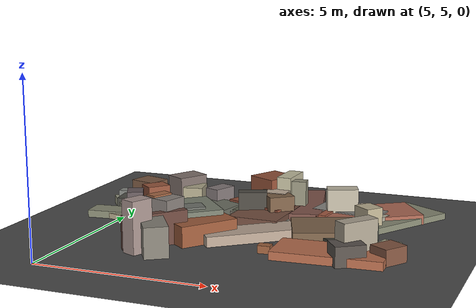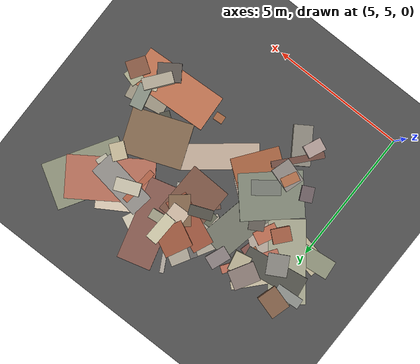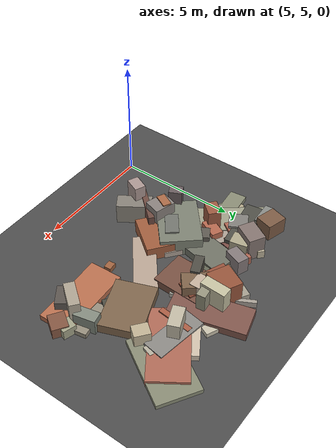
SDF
<sdf version="1.6">
 <world name="navitas_arena">
  <model name="ground_plane">
   <static>true</static>
   <link name="link">
    <collision name="collision">
     <geometry><plane><normal>0 0 1</normal><size>400 400</size></plane></geometry>
     <surface><friction><ode><mu>0.800</mu><mu2>0.800</mu2></ode></friction></surface>
    </collision>
    <visual name="visual">
     <cast_shadows>false</cast_shadows>
     <geometry><plane><normal>0 0 1</normal><size>400 400</size></plane></geometry>
     <material>
      <specular>0.04 0.04 0.04 1</specular>
      <script>
       <uri>file://media/materials/scripts/navitas_asphalt.material</uri>
       <name>Navitas/RealArenaAsphalt</name>
      </script>
     </material>
    </visual>
   </link>
  </model>
  <model name="deb_orta_13">
   <static>true</static>
   <pose>12.582 8.176 0.000 0 0 0</pose>
   <link name="link">
    <collision name="col_0">
     <pose>-0.451 0.122 0.120 0.000 0.000 0.054</pose>
     <geometry><box><size>3.081 1.350 0.240</size></box></geometry>
    </collision>
    <visual name="vis_0">
     <pose>-0.451 0.122 0.120 0.000 0.000 0.054</pose>
     <geometry><box><size>3.081 1.350 0.240</size></box></geometry>
     <material>
      <ambient>0.68 0.40 0.29 1</ambient>
      <diffuse>0.73 0.44 0.31 1</diffuse>
      <specular>0.05 0.05 0.045 1</specular>
     </material>
    </visual>
    <collision name="col_1">
     <pose>0.221 0.506 0.106 0.000 0.000 0.178</pose>
     <geometry><box><size>1.469 1.584 0.212</size></box></geometry>
    </collision>
    <visual name="vis_1">
     <pose>0.221 0.506 0.106 0.000 0.000 0.178</pose>
     <geometry><box><size>1.469 1.584 0.212</size></box></geometry>
     <material>
      <ambient>0.54 0.52 0.45 1</ambient>
      <diffuse>0.59 0.56 0.49 1</diffuse>
      <specular>0.05 0.05 0.045 1</specular>
     </material>
    </visual>
    <collision name="col_2">
     <pose>0.133 0.547 0.085 0.000 0.000 0.479</pose>
     <geometry><box><size>0.450 0.287 0.169</size></box></geometry>
    </collision>
    <visual name="vis_2">
     <pose>0.133 0.547 0.085 0.000 0.000 0.479</pose>
     <geometry><box><size>0.450 0.287 0.169</size></box></geometry>
     <material>
      <ambient>0.52 0.48 0.48 1</ambient>
      <diffuse>0.56 0.51 0.52 1</diffuse>
      <specular>0.05 0.05 0.045 1</specular>
     </material>
    </visual>
    <collision name="col_3">
     <pose>0.064 -0.182 0.288 0.000 0.000 2.178</pose>
     <geometry><box><size>0.678 0.854 0.577</size></box></geometry>
    </collision>
    <visual name="vis_3">
     <pose>0.064 -0.182 0.288 0.000 0.000 2.178</pose>
     <geometry><box><size>0.678 0.854 0.577</size></box></geometry>
     <material>
      <ambient>0.34 0.30 0.29 1</ambient>
      <diffuse>0.36 0.33 0.31 1</diffuse>
      <specular>0.05 0.05 0.045 1</specular>
     </material>
    </visual>
   </link>
  </model>
  <model name="deb_orta_18">
   <static>true</static>
   <pose>10.770 9.122 0.000 0 0 0</pose>
   <link name="link">
    <collision name="col_0">
     <pose>1.001 0.191 0.128 0.000 0.000 -0.649</pose>
     <geometry><box><size>0.460 0.358 0.256</size></box></geometry>
    </collision>
    <visual name="vis_0">
     <pose>1.001 0.191 0.128 0.000 0.000 -0.649</pose>
     <geometry><box><size>0.460 0.358 0.256</size></box></geometry>
     <material>
      <ambient>0.28 0.28 0.24 1</ambient>
      <diffuse>0.30 0.30 0.26 1</diffuse>
      <specular>0.05 0.05 0.045 1</specular>
     </material>
    </visual>
    <collision name="col_1">
     <pose>-0.461 -0.972 0.109 0.000 0.000 1.649</pose>
     <geometry><box><size>0.286 0.354 0.218</size></box></geometry>
    </collision>
    <visual name="vis_1">
     <pose>-0.461 -0.972 0.109 0.000 0.000 1.649</pose>
     <geometry><box><size>0.286 0.354 0.218</size></box></geometry>
     <material>
      <ambient>0.58 0.36 0.24 1</ambient>
      <diffuse>0.63 0.39 0.25 1</diffuse>
      <specular>0.05 0.05 0.045 1</specular>
     </material>
    </visual>
    <collision name="col_2">
     <pose>-1.306 0.081 0.147 0.000 0.000 0.681</pose>
     <geometry><box><size>2.805 0.912 0.294</size></box></geometry>
    </collision>
    <visual name="vis_2">
     <pose>-1.306 0.081 0.147 0.000 0.000 0.681</pose>
     <geometry><box><size>2.805 0.912 0.294</size></box></geometry>
     <material>
      <ambient>0.68 0.60 0.53 1</ambient>
      <diffuse>0.73 0.65 0.58 1</diffuse>
      <specular>0.05 0.05 0.045 1</specular>
     </material>
    </visual>
    <collision name="col_3">
     <pose>0.809 0.943 0.200 0.000 0.000 0.368</pose>
     <geometry><box><size>2.230 1.648 0.401</size></box></geometry>
    </collision>
    <visual name="vis_3">
     <pose>0.809 0.943 0.200 0.000 0.000 0.368</pose>
     <geometry><box><size>2.230 1.648 0.401</size></box></geometry>
     <material>
      <ambient>0.46 0.37 0.28 1</ambient>
      <diffuse>0.50 0.40 0.30 1</diffuse>
      <specular>0.05 0.05 0.045 1</specular>
     </material>
    </visual>
   </link>
  </model>
  <model name="deb_orta_35">
   <static>true</static>
   <pose>7.128 10.707 0.000 0 0 0</pose>
   <link name="link">
    <collision name="col_0">
     <pose>-0.754 0.720 0.179 0.000 0.000 0.964</pose>
     <geometry><box><size>2.099 0.285 0.358</size></box></geometry>
    </collision>
    <visual name="vis_0">
     <pose>-0.754 0.720 0.179 0.000 0.000 0.964</pose>
     <geometry><box><size>2.099 0.285 0.358</size></box></geometry>
     <material>
      <ambient>0.65 0.38 0.30 1</ambient>
      <diffuse>0.70 0.41 0.33 1</diffuse>
      <specular>0.05 0.05 0.045 1</specular>
     </material>
    </visual>
    <collision name="col_1">
     <pose>0.303 -0.256 0.175 0.000 0.000 1.373</pose>
     <geometry><box><size>2.753 1.196 0.350</size></box></geometry>
    </collision>
    <visual name="vis_1">
     <pose>0.303 -0.256 0.175 0.000 0.000 1.373</pose>
     <geometry><box><size>2.753 1.196 0.350</size></box></geometry>
     <material>
      <ambient>0.41 0.42 0.37 1</ambient>
      <diffuse>0.44 0.45 0.40 1</diffuse>
      <specular>0.05 0.05 0.045 1</specular>
     </material>
    </visual>
    <collision name="col_2">
     <pose>-0.043 -0.608 0.284 0.000 0.000 3.665</pose>
     <geometry><box><size>0.559 0.820 0.568</size></box></geometry>
    </collision>
    <visual name="vis_2">
     <pose>-0.043 -0.608 0.284 0.000 0.000 3.665</pose>
     <geometry><box><size>0.559 0.820 0.568</size></box></geometry>
     <material>
      <ambient>0.34 0.32 0.30 1</ambient>
      <diffuse>0.37 0.35 0.32 1</diffuse>
      <specular>0.05 0.05 0.045 1</specular>
     </material>
    </visual>
    <collision name="col_3">
     <pose>-0.132 -0.032 0.159 0.000 0.000 1.115</pose>
     <geometry><box><size>1.093 0.151 0.318</size></box></geometry>
    </collision>
    <visual name="vis_3">
     <pose>-0.132 -0.032 0.159 0.000 0.000 1.115</pose>
     <geometry><box><size>1.093 0.151 0.318</size></box></geometry>
     <material>
      <ambient>0.45 0.32 0.24 1</ambient>
      <diffuse>0.49 0.35 0.26 1</diffuse>
      <specular>0.05 0.05 0.045 1</specular>
     </material>
    </visual>
    <collision name="col_4">
     <pose>-1.172 -0.051 0.111 0.000 0.000 1.307</pose>
     <geometry><box><size>1.717 1.446 0.221</size></box></geometry>
    </collision>
    <visual name="vis_4">
     <pose>-1.172 -0.051 0.111 0.000 0.000 1.307</pose>
     <geometry><box><size>1.717 1.446 0.221</size></box></geometry>
     <material>
      <ambient>0.45 0.28 0.26 1</ambient>
      <diffuse>0.49 0.31 0.28 1</diffuse>
      <specular>0.05 0.05 0.045 1</specular>
     </material>
    </visual>
    <collision name="col_5">
     <pose>0.150 0.673 0.160 0.000 0.000 3.395</pose>
     <geometry><box><size>0.405 0.422 0.320</size></box></geometry>
    </collision>
    <visual name="vis_5">
     <pose>0.150 0.673 0.160 0.000 0.000 3.395</pose>
     <geometry><box><size>0.405 0.422 0.320</size></box></geometry>
     <material>
      <ambient>0.53 0.52 0.47 1</ambient>
      <diffuse>0.57 0.56 0.51 1</diffuse>
      <specular>0.05 0.05 0.045 1</specular>
     </material>
    </visual>
   </link>
  </model>
  <model name="deb_orta_74">
   <static>true</static>
   <pose>11.235 11.596 0.000 0 0 0</pose>
   <link name="link">
    <collision name="col_0">
     <pose>0.086 0.420 0.502 0.000 0.000 3.532</pose>
     <geometry><box><size>0.921 0.475 1.005</size></box></geometry>
    </collision>
    <visual name="vis_0">
     <pose>0.086 0.420 0.502 0.000 0.000 3.532</pose>
     <geometry><box><size>0.921 0.475 1.005</size></box></geometry>
     <material>
      <ambient>0.70 0.68 0.60 1</ambient>
      <diffuse>0.76 0.73 0.65 1</diffuse>
      <specular>0.05 0.05 0.045 1</specular>
     </material>
    </visual>
    <collision name="col_1">
     <pose>0.535 -0.063 0.089 0.000 0.000 2.727</pose>
     <geometry><box><size>1.995 0.194 0.178</size></box></geometry>
    </collision>
    <visual name="vis_1">
     <pose>0.535 -0.063 0.089 0.000 0.000 2.727</pose>
     <geometry><box><size>1.995 0.194 0.178</size></box></geometry>
     <material>
      <ambient>0.75 0.69 0.60 1</ambient>
      <diffuse>0.81 0.75 0.65 1</diffuse>
      <specular>0.05 0.05 0.045 1</specular>
     </material>
    </visual>
    <collision name="col_2">
     <pose>0.456 0.613 0.067 0.000 0.000 1.453</pose>
     <geometry><box><size>1.656 0.122 0.135</size></box></geometry>
    </collision>
    <visual name="vis_2">
     <pose>0.456 0.613 0.067 0.000 0.000 1.453</pose>
     <geometry><box><size>1.656 0.122 0.135</size></box></geometry>
     <material>
      <ambient>0.35 0.34 0.34 1</ambient>
      <diffuse>0.38 0.37 0.36 1</diffuse>
      <specular>0.05 0.05 0.045 1</specular>
     </material>
    </visual>
    <collision name="col_3">
     <pose>0.200 0.618 0.133 0.000 0.000 2.126</pose>
     <geometry><box><size>1.535 1.779 0.266</size></box></geometry>
    </collision>
    <visual name="vis_3">
     <pose>0.200 0.618 0.133 0.000 0.000 2.126</pose>
     <geometry><box><size>1.535 1.779 0.266</size></box></geometry>
     <material>
      <ambient>0.76 0.70 0.63 1</ambient>
      <diffuse>0.82 0.76 0.68 1</diffuse>
      <specular>0.05 0.05 0.045 1</specular>
     </material>
    </visual>
    <collision name="col_4">
     <pose>-0.198 0.180 0.179 0.000 0.000 1.469</pose>
     <geometry><box><size>1.384 0.225 0.357</size></box></geometry>
    </collision>
    <visual name="vis_4">
     <pose>-0.198 0.180 0.179 0.000 0.000 1.469</pose>
     <geometry><box><size>1.384 0.225 0.357</size></box></geometry>
     <material>
      <ambient>0.62 0.34 0.25 1</ambient>
      <diffuse>0.67 0.37 0.27 1</diffuse>
      <specular>0.05 0.05 0.045 1</specular>
     </material>
    </visual>
   </link>
  </model>
  <model name="deb_orta_101">
   <static>true</static>
   <pose>12.475 11.785 0.000 0 0 0</pose>
   <link name="link">
    <collision name="col_0">
     <pose>0.169 0.025 0.155 0.000 0.000 1.248</pose>
     <geometry><box><size>0.431 0.177 0.311</size></box></geometry>
    </collision>
    <visual name="vis_0">
     <pose>0.169 0.025 0.155 0.000 0.000 1.248</pose>
     <geometry><box><size>0.431 0.177 0.311</size></box></geometry>
     <material>
      <ambient>0.67 0.65 0.58 1</ambient>
      <diffuse>0.72 0.70 0.63 1</diffuse>
      <specular>0.05 0.05 0.045 1</specular>
     </material>
    </visual>
    <collision name="col_1">
     <pose>-0.925 0.310 0.169 0.000 0.000 -0.153</pose>
     <geometry><box><size>2.104 0.859 0.338</size></box></geometry>
    </collision>
    <visual name="vis_1">
     <pose>-0.925 0.310 0.169 0.000 0.000 -0.153</pose>
     <geometry><box><size>2.104 0.859 0.338</size></box></geometry>
     <material>
      <ambient>0.51 0.50 0.48 1</ambient>
      <diffuse>0.55 0.54 0.52 1</diffuse>
      <specular>0.05 0.05 0.045 1</specular>
     </material>
    </visual>
    <collision name="col_2">
     <pose>-0.127 -0.536 0.361 0.000 0.000 0.902</pose>
     <geometry><box><size>0.530 0.630 0.721</size></box></geometry>
    </collision>
    <visual name="vis_2">
     <pose>-0.127 -0.536 0.361 0.000 0.000 0.902</pose>
     <geometry><box><size>0.530 0.630 0.721</size></box></geometry>
     <material>
      <ambient>0.70 0.65 0.54 1</ambient>
      <diffuse>0.75 0.70 0.58 1</diffuse>
      <specular>0.05 0.05 0.045 1</specular>
     </material>
    </visual>
    <collision name="col_3">
     <pose>0.249 0.722 0.095 0.000 0.000 1.021</pose>
     <geometry><box><size>2.863 1.711 0.189</size></box></geometry>
    </collision>
    <visual name="vis_3">
     <pose>0.249 0.722 0.095 0.000 0.000 1.021</pose>
     <geometry><box><size>2.863 1.711 0.189</size></box></geometry>
     <material>
      <ambient>0.50 0.51 0.42 1</ambient>
      <diffuse>0.54 0.55 0.46 1</diffuse>
      <specular>0.05 0.05 0.045 1</specular>
     </material>
    </visual>
    <collision name="col_4">
     <pose>-0.492 0.411 0.149 0.000 0.000 0.601</pose>
     <geometry><box><size>3.148 1.547 0.298</size></box></geometry>
    </collision>
    <visual name="vis_4">
     <pose>-0.492 0.411 0.149 0.000 0.000 0.601</pose>
     <geometry><box><size>3.148 1.547 0.298</size></box></geometry>
     <material>
      <ambient>0.64 0.39 0.31 1</ambient>
      <diffuse>0.69 0.42 0.34 1</diffuse>
      <specular>0.05 0.05 0.045 1</specular>
     </material>
    </visual>
   </link>
  </model>
  <model name="deb_orta_126">
   <static>true</static>
   <pose>9.782 11.906 0.000 0 0 0</pose>
   <link name="link">
    <collision name="col_0">
     <pose>-0.271 0.527 0.593 0.000 0.000 1.530</pose>
     <geometry><box><size>1.044 0.446 1.186</size></box></geometry>
    </collision>
    <visual name="vis_0">
     <pose>-0.271 0.527 0.593 0.000 0.000 1.530</pose>
     <geometry><box><size>1.044 0.446 1.186</size></box></geometry>
     <material>
      <ambient>0.72 0.70 0.59 1</ambient>
      <diffuse>0.78 0.76 0.64 1</diffuse>
      <specular>0.05 0.05 0.045 1</specular>
     </material>
    </visual>
    <collision name="col_1">
     <pose>0.134 0.641 0.166 0.000 0.000 1.835</pose>
     <geometry><box><size>3.033 1.246 0.332</size></box></geometry>
    </collision>
    <visual name="vis_1">
     <pose>0.134 0.641 0.166 0.000 0.000 1.835</pose>
     <geometry><box><size>3.033 1.246 0.332</size></box></geometry>
     <material>
      <ambient>0.47 0.32 0.28 1</ambient>
      <diffuse>0.51 0.34 0.30 1</diffuse>
      <specular>0.05 0.05 0.045 1</specular>
     </material>
    </visual>
    <collision name="col_2">
     <pose>0.269 -0.531 0.138 0.000 0.000 1.431</pose>
     <geometry><box><size>0.306 0.452 0.275</size></box></geometry>
    </collision>
    <visual name="vis_2">
     <pose>0.269 -0.531 0.138 0.000 0.000 1.431</pose>
     <geometry><box><size>0.306 0.452 0.275</size></box></geometry>
     <material>
      <ambient>0.57 0.56 0.51 1</ambient>
      <diffuse>0.61 0.60 0.55 1</diffuse>
      <specular>0.05 0.05 0.045 1</specular>
     </material>
    </visual>
    <collision name="col_3">
     <pose>-0.055 0.261 0.539 0.000 0.000 0.119</pose>
     <geometry><box><size>0.828 0.360 1.078</size></box></geometry>
    </collision>
    <visual name="vis_3">
     <pose>-0.055 0.261 0.539 0.000 0.000 0.119</pose>
     <geometry><box><size>0.828 0.360 1.078</size></box></geometry>
     <material>
      <ambient>0.56 0.54 0.46 1</ambient>
      <diffuse>0.60 0.59 0.50 1</diffuse>
      <specular>0.05 0.05 0.045 1</specular>
     </material>
    </visual>
    <collision name="col_4">
     <pose>-0.521 -0.154 0.087 0.000 0.000 1.322</pose>
     <geometry><box><size>1.817 0.288 0.174</size></box></geometry>
    </collision>
    <visual name="vis_4">
     <pose>-0.521 -0.154 0.087 0.000 0.000 1.322</pose>
     <geometry><box><size>1.817 0.288 0.174</size></box></geometry>
     <material>
      <ambient>0.52 0.50 0.49 1</ambient>
      <diffuse>0.56 0.54 0.53 1</diffuse>
      <specular>0.05 0.05 0.045 1</specular>
     </material>
    </visual>
   </link>
  </model>
  <model name="deb_orta_128">
   <static>true</static>
   <pose>8.802 11.822 0.000 0 0 0</pose>
   <link name="link">
    <collision name="col_0">
     <pose>0.995 -0.898 0.088 0.000 0.000 0.536</pose>
     <geometry><box><size>0.383 0.479 0.176</size></box></geometry>
    </collision>
    <visual name="vis_0">
     <pose>0.995 -0.898 0.088 0.000 0.000 0.536</pose>
     <geometry><box><size>0.383 0.479 0.176</size></box></geometry>
     <material>
      <ambient>0.58 0.58 0.54 1</ambient>
      <diffuse>0.63 0.62 0.58 1</diffuse>
      <specular>0.05 0.05 0.045 1</specular>
     </material>
    </visual>
    <collision name="col_1">
     <pose>-0.466 0.218 0.131 0.000 0.000 1.049</pose>
     <geometry><box><size>2.185 1.124 0.262</size></box></geometry>
    </collision>
    <visual name="vis_1">
     <pose>-0.466 0.218 0.131 0.000 0.000 1.049</pose>
     <geometry><box><size>2.185 1.124 0.262</size></box></geometry>
     <material>
      <ambient>0.60 0.57 0.51 1</ambient>
      <diffuse>0.65 0.62 0.56 1</diffuse>
      <specular>0.05 0.05 0.045 1</specular>
     </material>
    </visual>
    <collision name="col_2">
     <pose>0.252 -0.545 0.137 0.000 0.000 0.834</pose>
     <geometry><box><size>2.010 0.234 0.274</size></box></geometry>
    </collision>
    <visual name="vis_2">
     <pose>0.252 -0.545 0.137 0.000 0.000 0.834</pose>
     <geometry><box><size>2.010 0.234 0.274</size></box></geometry>
     <material>
      <ambient>0.42 0.28 0.23 1</ambient>
      <diffuse>0.45 0.31 0.25 1</diffuse>
      <specular>0.05 0.05 0.045 1</specular>
     </material>
    </visual>
    <collision name="col_3">
     <pose>0.208 0.973 0.130 0.000 0.000 2.065</pose>
     <geometry><box><size>1.965 0.156 0.261</size></box></geometry>
    </collision>
    <visual name="vis_3">
     <pose>0.208 0.973 0.130 0.000 0.000 2.065</pose>
     <geometry><box><size>1.965 0.156 0.261</size></box></geometry>
     <material>
      <ambient>0.61 0.58 0.54 1</ambient>
      <diffuse>0.66 0.63 0.59 1</diffuse>
      <specular>0.05 0.05 0.045 1</specular>
     </material>
    </visual>
    <collision name="col_4">
     <pose>-0.471 -0.682 0.157 0.000 0.000 1.496</pose>
     <geometry><box><size>0.476 0.215 0.314</size></box></geometry>
    </collision>
    <visual name="vis_4">
     <pose>-0.471 -0.682 0.157 0.000 0.000 1.496</pose>
     <geometry><box><size>0.476 0.215 0.314</size></box></geometry>
     <material>
      <ambient>0.36 0.37 0.30 1</ambient>
      <diffuse>0.39 0.40 0.33 1</diffuse>
      <specular>0.05 0.05 0.045 1</specular>
     </material>
    </visual>
    <collision name="col_5">
     <pose>1.021 0.457 0.099 0.000 0.000 1.141</pose>
     <geometry><box><size>2.137 1.241 0.198</size></box></geometry>
    </collision>
    <visual name="vis_5">
     <pose>1.021 0.457 0.099 0.000 0.000 1.141</pose>
     <geometry><box><size>2.137 1.241 0.198</size></box></geometry>
     <material>
      <ambient>0.73 0.71 0.63 1</ambient>
      <diffuse>0.79 0.76 0.68 1</diffuse>
      <specular>0.05 0.05 0.045 1</specular>
     </material>
    </visual>
   </link>
  </model>
  <model name="deb_orta_158">
   <static>true</static>
   <pose>6.086 10.626 0.000 0 0 0</pose>
   <link name="link">
    <collision name="col_0">
     <pose>0.168 -0.129 0.091 0.000 0.000 0.092</pose>
     <geometry><box><size>1.482 0.172 0.182</size></box></geometry>
    </collision>
    <visual name="vis_0">
     <pose>0.168 -0.129 0.091 0.000 0.000 0.092</pose>
     <geometry><box><size>1.482 0.172 0.182</size></box></geometry>
     <material>
      <ambient>0.27 0.26 0.28 1</ambient>
      <diffuse>0.29 0.28 0.31 1</diffuse>
      <specular>0.05 0.05 0.045 1</specular>
     </material>
    </visual>
    <collision name="col_1">
     <pose>0.107 0.341 0.075 0.000 0.000 1.076</pose>
     <geometry><box><size>0.306 0.418 0.149</size></box></geometry>
    </collision>
    <visual name="vis_1">
     <pose>0.107 0.341 0.075 0.000 0.000 1.076</pose>
     <geometry><box><size>0.306 0.418 0.149</size></box></geometry>
     <material>
      <ambient>0.52 0.53 0.51 1</ambient>
      <diffuse>0.56 0.57 0.55 1</diffuse>
      <specular>0.05 0.05 0.045 1</specular>
     </material>
    </visual>
    <collision name="col_2">
     <pose>-0.003 0.619 0.135 0.000 0.000 -0.432</pose>
     <geometry><box><size>1.117 0.261 0.270</size></box></geometry>
    </collision>
    <visual name="vis_2">
     <pose>-0.003 0.619 0.135 0.000 0.000 -0.432</pose>
     <geometry><box><size>1.117 0.261 0.270</size></box></geometry>
     <material>
      <ambient>0.60 0.38 0.26 1</ambient>
      <diffuse>0.65 0.41 0.28 1</diffuse>
      <specular>0.05 0.05 0.045 1</specular>
     </material>
    </visual>
    <collision name="col_3">
     <pose>0.423 -0.304 0.269 0.000 0.000 -0.459</pose>
     <geometry><box><size>0.483 0.840 0.538</size></box></geometry>
    </collision>
    <visual name="vis_3">
     <pose>0.423 -0.304 0.269 0.000 0.000 -0.459</pose>
     <geometry><box><size>0.483 0.840 0.538</size></box></geometry>
     <material>
      <ambient>0.66 0.38 0.29 1</ambient>
      <diffuse>0.71 0.41 0.31 1</diffuse>
      <specular>0.05 0.05 0.045 1</specular>
     </material>
    </visual>
   </link>
  </model>
  <model name="deb_orta_216">
   <static>true</static>
   <pose>13.186 8.755 0.000 0 0 0</pose>
   <link name="link">
    <collision name="col_0">
     <pose>0.366 0.090 0.210 0.000 0.000 -0.283</pose>
     <geometry><box><size>0.534 0.507 0.419</size></box></geometry>
    </collision>
    <visual name="vis_0">
     <pose>0.366 0.090 0.210 0.000 0.000 -0.283</pose>
     <geometry><box><size>0.534 0.507 0.419</size></box></geometry>
     <material>
      <ambient>0.61 0.60 0.50 1</ambient>
      <diffuse>0.65 0.65 0.54 1</diffuse>
      <specular>0.05 0.05 0.045 1</specular>
     </material>
    </visual>
    <collision name="col_1">
     <pose>-0.420 -0.279 0.544 0.000 0.000 0.911</pose>
     <geometry><box><size>1.094 0.422 1.088</size></box></geometry>
    </collision>
    <visual name="vis_1">
     <pose>-0.420 -0.279 0.544 0.000 0.000 0.911</pose>
     <geometry><box><size>1.094 0.422 1.088</size></box></geometry>
     <material>
      <ambient>0.63 0.59 0.52 1</ambient>
      <diffuse>0.68 0.64 0.57 1</diffuse>
      <specular>0.05 0.05 0.045 1</specular>
     </material>
    </visual>
    <collision name="col_2">
     <pose>-0.278 0.510 0.340 0.000 0.000 0.222</pose>
     <geometry><box><size>0.474 0.878 0.681</size></box></geometry>
    </collision>
    <visual name="vis_2">
     <pose>-0.278 0.510 0.340 0.000 0.000 0.222</pose>
     <geometry><box><size>0.474 0.878 0.681</size></box></geometry>
     <material>
      <ambient>0.48 0.51 0.46 1</ambient>
      <diffuse>0.52 0.55 0.50 1</diffuse>
      <specular>0.05 0.05 0.045 1</specular>
     </material>
    </visual>
    <collision name="col_3">
     <pose>-0.391 -0.132 0.153 0.000 0.000 0.416</pose>
     <geometry><box><size>0.221 0.468 0.305</size></box></geometry>
    </collision>
    <visual name="vis_3">
     <pose>-0.391 -0.132 0.153 0.000 0.000 0.416</pose>
     <geometry><box><size>0.221 0.468 0.305</size></box></geometry>
     <material>
      <ambient>0.71 0.69 0.59 1</ambient>
      <diffuse>0.76 0.74 0.64 1</diffuse>
      <specular>0.05 0.05 0.045 1</specular>
     </material>
    </visual>
    <collision name="col_4">
     <pose>0.442 -0.223 0.233 0.000 0.000 0.983</pose>
     <geometry><box><size>0.735 0.636 0.466</size></box></geometry>
    </collision>
    <visual name="vis_4">
     <pose>0.442 -0.223 0.233 0.000 0.000 0.983</pose>
     <geometry><box><size>0.735 0.636 0.466</size></box></geometry>
     <material>
      <ambient>0.48 0.31 0.24 1</ambient>
      <diffuse>0.52 0.34 0.26 1</diffuse>
      <specular>0.05 0.05 0.045 1</specular>
     </material>
    </visual>
    <collision name="col_5">
     <pose>-0.416 -0.451 0.126 0.000 0.000 -0.937</pose>
     <geometry><box><size>0.489 0.343 0.251</size></box></geometry>
    </collision>
    <visual name="vis_5">
     <pose>-0.416 -0.451 0.126 0.000 0.000 -0.937</pose>
     <geometry><box><size>0.489 0.343 0.251</size></box></geometry>
     <material>
      <ambient>0.53 0.53 0.49 1</ambient>
      <diffuse>0.57 0.57 0.53 1</diffuse>
      <specular>0.05 0.05 0.045 1</specular>
     </material>
    </visual>
   </link>
  </model>
  <model name="deb_orta_224">
   <static>true</static>
   <pose>8.830 11.264 0.000 0 0 0</pose>
   <link name="link">
    <collision name="col_0">
     <pose>0.138 -0.294 0.091 0.000 0.000 1.089</pose>
     <geometry><box><size>0.195 0.310 0.183</size></box></geometry>
    </collision>
    <visual name="vis_0">
     <pose>0.138 -0.294 0.091 0.000 0.000 1.089</pose>
     <geometry><box><size>0.195 0.310 0.183</size></box></geometry>
     <material>
      <ambient>0.47 0.35 0.26 1</ambient>
      <diffuse>0.50 0.38 0.29 1</diffuse>
      <specular>0.05 0.05 0.045 1</specular>
     </material>
    </visual>
    <collision name="col_1">
     <pose>0.439 -0.029 0.100 0.000 0.000 0.655</pose>
     <geometry><box><size>2.148 0.241 0.200</size></box></geometry>
    </collision>
    <visual name="vis_1">
     <pose>0.439 -0.029 0.100 0.000 0.000 0.655</pose>
     <geometry><box><size>2.148 0.241 0.200</size></box></geometry>
     <material>
      <ambient>0.38 0.25 0.20 1</ambient>
      <diffuse>0.41 0.27 0.21 1</diffuse>
      <specular>0.05 0.05 0.045 1</specular>
     </material>
    </visual>
    <collision name="col_2">
     <pose>0.382 -0.276 0.174 0.000 0.000 1.537</pose>
     <geometry><box><size>1.923 1.537 0.347</size></box></geometry>
    </collision>
    <visual name="vis_2">
     <pose>0.382 -0.276 0.174 0.000 0.000 1.537</pose>
     <geometry><box><size>1.923 1.537 0.347</size></box></geometry>
     <material>
      <ambient>0.43 0.30 0.24 1</ambient>
      <diffuse>0.47 0.32 0.26 1</diffuse>
      <specular>0.05 0.05 0.045 1</specular>
     </material>
    </visual>
    <collision name="col_3">
     <pose>0.095 0.620 0.134 0.000 0.000 2.541</pose>
     <geometry><box><size>2.308 0.266 0.269</size></box></geometry>
    </collision>
    <visual name="vis_3">
     <pose>0.095 0.620 0.134 0.000 0.000 2.541</pose>
     <geometry><box><size>2.308 0.266 0.269</size></box></geometry>
     <material>
      <ambient>0.37 0.37 0.35 1</ambient>
      <diffuse>0.40 0.39 0.38 1</diffuse>
      <specular>0.05 0.05 0.045 1</specular>
     </material>
    </visual>
    <collision name="col_4">
     <pose>-0.060 -0.116 0.443 0.000 0.000 0.386</pose>
     <geometry><box><size>0.855 0.374 0.886</size></box></geometry>
    </collision>
    <visual name="vis_4">
     <pose>-0.060 -0.116 0.443 0.000 0.000 0.386</pose>
     <geometry><box><size>0.855 0.374 0.886</size></box></geometry>
     <material>
      <ambient>0.29 0.28 0.25 1</ambient>
      <diffuse>0.31 0.30 0.27 1</diffuse>
      <specular>0.05 0.05 0.045 1</specular>
     </material>
    </visual>
   </link>
  </model>
  <model name="deb_orta_228">
   <static>true</static>
   <pose>6.116 10.325 0.000 0 0 0</pose>
   <link name="link">
    <collision name="col_0">
     <pose>0.859 -0.496 0.123 0.000 0.000 2.470</pose>
     <geometry><box><size>2.932 1.506 0.246</size></box></geometry>
    </collision>
    <visual name="vis_0">
     <pose>0.859 -0.496 0.123 0.000 0.000 2.470</pose>
     <geometry><box><size>2.932 1.506 0.246</size></box></geometry>
     <material>
      <ambient>0.63 0.58 0.54 1</ambient>
      <diffuse>0.68 0.63 0.58 1</diffuse>
      <specular>0.05 0.05 0.045 1</specular>
     </material>
    </visual>
    <collision name="col_1">
     <pose>-0.777 0.312 0.133 0.000 0.000 2.233</pose>
     <geometry><box><size>2.993 1.329 0.266</size></box></geometry>
    </collision>
    <visual name="vis_1">
     <pose>-0.777 0.312 0.133 0.000 0.000 2.233</pose>
     <geometry><box><size>2.993 1.329 0.266</size></box></geometry>
     <material>
      <ambient>0.58 0.59 0.50 1</ambient>
      <diffuse>0.63 0.63 0.54 1</diffuse>
      <specular>0.05 0.05 0.045 1</specular>
     </material>
    </visual>
    <collision name="col_2">
     <pose>-0.573 -0.451 0.083 0.000 0.000 2.935</pose>
     <geometry><box><size>2.579 0.754 0.167</size></box></geometry>
    </collision>
    <visual name="vis_2">
     <pose>-0.573 -0.451 0.083 0.000 0.000 2.935</pose>
     <geometry><box><size>2.579 0.754 0.167</size></box></geometry>
     <material>
      <ambient>0.67 0.63 0.52 1</ambient>
      <diffuse>0.72 0.68 0.56 1</diffuse>
      <specular>0.05 0.05 0.045 1</specular>
     </material>
    </visual>
    <collision name="col_3">
     <pose>-0.024 -0.300 0.552 0.000 0.000 4.006</pose>
     <geometry><box><size>0.677 0.523 1.104</size></box></geometry>
    </collision>
    <visual name="vis_3">
     <pose>-0.024 -0.300 0.552 0.000 0.000 4.006</pose>
     <geometry><box><size>0.677 0.523 1.104</size></box></geometry>
     <material>
      <ambient>0.56 0.32 0.23 1</ambient>
      <diffuse>0.61 0.35 0.25 1</diffuse>
      <specular>0.05 0.05 0.045 1</specular>
     </material>
    </visual>
    <collision name="col_4">
     <pose>-0.585 0.605 0.238 0.000 0.000 3.646</pose>
     <geometry><box><size>0.758 0.776 0.476</size></box></geometry>
    </collision>
    <visual name="vis_4">
     <pose>-0.585 0.605 0.238 0.000 0.000 3.646</pose>
     <geometry><box><size>0.758 0.776 0.476</size></box></geometry>
     <material>
      <ambient>0.47 0.46 0.44 1</ambient>
      <diffuse>0.51 0.50 0.48 1</diffuse>
      <specular>0.05 0.05 0.045 1</specular>
     </material>
    </visual>
    <collision name="col_5">
     <pose>-0.606 -0.211 0.109 0.000 0.000 3.249</pose>
     <geometry><box><size>3.168 0.693 0.218</size></box></geometry>
    </collision>
    <visual name="vis_5">
     <pose>-0.606 -0.211 0.109 0.000 0.000 3.249</pose>
     <geometry><box><size>3.168 0.693 0.218</size></box></geometry>
     <material>
      <ambient>0.50 0.51 0.42 1</ambient>
      <diffuse>0.54 0.55 0.46 1</diffuse>
      <specular>0.05 0.05 0.045 1</specular>
     </material>
    </visual>
    <collision name="col_6">
     <pose>-1.088 -0.336 0.105 0.000 0.000 3.692</pose>
     <geometry><box><size>0.263 0.352 0.209</size></box></geometry>
    </collision>
    <visual name="vis_6">
     <pose>-1.088 -0.336 0.105 0.000 0.000 3.692</pose>
     <geometry><box><size>0.263 0.352 0.209</size></box></geometry>
     <material>
      <ambient>0.44 0.46 0.40 1</ambient>
      <diffuse>0.47 0.50 0.43 1</diffuse>
      <specular>0.05 0.05 0.045 1</specular>
     </material>
    </visual>
   </link>
  </model>
  <model name="deb_orta_251">
   <static>true</static>
   <pose>5.401 12.035 0.000 0 0 0</pose>
   <link name="link">
    <collision name="col_0">
     <pose>-0.551 -0.008 0.362 0.000 0.000 -0.277</pose>
     <geometry><box><size>0.871 0.738 0.723</size></box></geometry>
    </collision>
    <visual name="vis_0">
     <pose>-0.551 -0.008 0.362 0.000 0.000 -0.277</pose>
     <geometry><box><size>0.871 0.738 0.723</size></box></geometry>
     <material>
      <ambient>0.45 0.33 0.25 1</ambient>
      <diffuse>0.49 0.36 0.27 1</diffuse>
      <specular>0.05 0.05 0.045 1</specular>
     </material>
    </visual>
    <collision name="col_1">
     <pose>0.084 -0.804 0.195 0.000 0.000 0.150</pose>
     <geometry><box><size>2.315 0.809 0.391</size></box></geometry>
    </collision>
    <visual name="vis_1">
     <pose>0.084 -0.804 0.195 0.000 0.000 0.150</pose>
     <geometry><box><size>2.315 0.809 0.391</size></box></geometry>
     <material>
      <ambient>0.28 0.28 0.26 1</ambient>
      <diffuse>0.31 0.31 0.28 1</diffuse>
      <specular>0.05 0.05 0.045 1</specular>
     </material>
    </visual>
    <collision name="col_2">
     <pose>0.207 -0.355 0.175 0.000 0.000 0.834</pose>
     <geometry><box><size>2.253 0.287 0.349</size></box></geometry>
    </collision>
    <visual name="vis_2">
     <pose>0.207 -0.355 0.175 0.000 0.000 0.834</pose>
     <geometry><box><size>2.253 0.287 0.349</size></box></geometry>
     <material>
      <ambient>0.68 0.65 0.56 1</ambient>
      <diffuse>0.74 0.70 0.60 1</diffuse>
      <specular>0.05 0.05 0.045 1</specular>
     </material>
    </visual>
    <collision name="col_3">
     <pose>-0.835 -0.475 0.226 0.000 0.000 0.066</pose>
     <geometry><box><size>1.001 0.375 0.452</size></box></geometry>
    </collision>
    <visual name="vis_3">
     <pose>-0.835 -0.475 0.226 0.000 0.000 0.066</pose>
     <geometry><box><size>1.001 0.375 0.452</size></box></geometry>
     <material>
      <ambient>0.49 0.50 0.48 1</ambient>
      <diffuse>0.53 0.54 0.52 1</diffuse>
      <specular>0.05 0.05 0.045 1</specular>
     </material>
    </visual>
   </link>
  </model>
  <model name="deb_orta_273">
   <static>true</static>
   <pose>6.567 11.761 0.000 0 0 0</pose>
   <link name="link">
    <collision name="col_0">
     <pose>-0.727 -0.114 0.125 0.000 0.000 3.398</pose>
     <geometry><box><size>0.419 0.477 0.251</size></box></geometry>
    </collision>
    <visual name="vis_0">
     <pose>-0.727 -0.114 0.125 0.000 0.000 3.398</pose>
     <geometry><box><size>0.419 0.477 0.251</size></box></geometry>
     <material>
      <ambient>0.72 0.68 0.61 1</ambient>
      <diffuse>0.78 0.74 0.65 1</diffuse>
      <specular>0.05 0.05 0.045 1</specular>
     </material>
    </visual>
    <collision name="col_1">
     <pose>-0.331 0.179 0.507 0.000 0.000 2.618</pose>
     <geometry><box><size>0.698 0.965 1.014</size></box></geometry>
    </collision>
    <visual name="vis_1">
     <pose>-0.331 0.179 0.507 0.000 0.000 2.618</pose>
     <geometry><box><size>0.698 0.965 1.014</size></box></geometry>
     <material>
      <ambient>0.48 0.43 0.41 1</ambient>
      <diffuse>0.52 0.46 0.44 1</diffuse>
      <specular>0.05 0.05 0.045 1</specular>
     </material>
    </visual>
    <collision name="col_2">
     <pose>0.042 -0.064 0.373 0.000 0.000 3.344</pose>
     <geometry><box><size>0.604 0.716 0.746</size></box></geometry>
    </collision>
    <visual name="vis_2">
     <pose>0.042 -0.064 0.373 0.000 0.000 3.344</pose>
     <geometry><box><size>0.604 0.716 0.746</size></box></geometry>
     <material>
      <ambient>0.64 0.61 0.51 1</ambient>
      <diffuse>0.69 0.66 0.55 1</diffuse>
      <specular>0.05 0.05 0.045 1</specular>
     </material>
    </visual>
    <collision name="col_3">
     <pose>0.759 0.246 0.349 0.000 0.000 2.781</pose>
     <geometry><box><size>0.493 0.766 0.698</size></box></geometry>
    </collision>
    <visual name="vis_3">
     <pose>0.759 0.246 0.349 0.000 0.000 2.781</pose>
     <geometry><box><size>0.493 0.766 0.698</size></box></geometry>
     <material>
      <ambient>0.48 0.45 0.44 1</ambient>
      <diffuse>0.52 0.48 0.48 1</diffuse>
      <specular>0.05 0.05 0.045 1</specular>
     </material>
    </visual>
   </link>
  </model>
  <model name="deb_orta_299">
   <static>true</static>
   <pose>9.293 11.980 0.000 0 0 0</pose>
   <link name="link">
    <collision name="col_0">
     <pose>-0.433 -0.315 0.207 0.000 0.000 2.745</pose>
     <geometry><box><size>2.004 0.783 0.414</size></box></geometry>
    </collision>
    <visual name="vis_0">
     <pose>-0.433 -0.315 0.207 0.000 0.000 2.745</pose>
     <geometry><box><size>2.004 0.783 0.414</size></box></geometry>
     <material>
      <ambient>0.54 0.30 0.21 1</ambient>
      <diffuse>0.59 0.32 0.23 1</diffuse>
      <specular>0.05 0.05 0.045 1</specular>
     </material>
    </visual>
    <collision name="col_1">
     <pose>0.071 -0.107 0.405 0.000 0.000 1.587</pose>
     <geometry><box><size>0.900 0.673 0.810</size></box></geometry>
    </collision>
    <visual name="vis_1">
     <pose>0.071 -0.107 0.405 0.000 0.000 1.587</pose>
     <geometry><box><size>0.900 0.673 0.810</size></box></geometry>
     <material>
      <ambient>0.73 0.65 0.57 1</ambient>
      <diffuse>0.78 0.70 0.62 1</diffuse>
      <specular>0.05 0.05 0.045 1</specular>
     </material>
    </visual>
    <collision name="col_2">
     <pose>-0.345 0.466 0.551 0.000 0.000 1.105</pose>
     <geometry><box><size>1.022 0.959 1.101</size></box></geometry>
    </collision>
    <visual name="vis_2">
     <pose>-0.345 0.466 0.551 0.000 0.000 1.105</pose>
     <geometry><box><size>1.022 0.959 1.101</size></box></geometry>
     <material>
      <ambient>0.55 0.30 0.22 1</ambient>
      <diffuse>0.59 0.33 0.23 1</diffuse>
      <specular>0.05 0.05 0.045 1</specular>
     </material>
    </visual>
    <collision name="col_3">
     <pose>0.089 -0.441 0.395 0.000 0.000 2.260</pose>
     <geometry><box><size>1.116 0.762 0.790</size></box></geometry>
    </collision>
    <visual name="vis_3">
     <pose>0.089 -0.441 0.395 0.000 0.000 2.260</pose>
     <geometry><box><size>1.116 0.762 0.790</size></box></geometry>
     <material>
      <ambient>0.46 0.36 0.27 1</ambient>
      <diffuse>0.50 0.39 0.29 1</diffuse>
      <specular>0.05 0.05 0.045 1</specular>
     </material>
    </visual>
    <collision name="col_4">
     <pose>-0.012 0.286 0.350 0.000 0.000 3.401</pose>
     <geometry><box><size>0.654 0.669 0.699</size></box></geometry>
    </collision>
    <visual name="vis_4">
     <pose>-0.012 0.286 0.350 0.000 0.000 3.401</pose>
     <geometry><box><size>0.654 0.669 0.699</size></box></geometry>
     <material>
      <ambient>0.45 0.33 0.23 1</ambient>
      <diffuse>0.49 0.35 0.25 1</diffuse>
      <specular>0.05 0.05 0.045 1</specular>
     </material>
    </visual>
   </link>
  </model>
  <model name="chic_orta_3">
   <static>true</static>
   <pose>7.034 8.189 0.000 0 0 0</pose>
   <link name="link">
    <collision name="col_0">
     <pose>0.040 -1.224 0.743 0.000 0.000 1.155</pose>
     <geometry><box><size>0.661 0.463 1.486</size></box></geometry>
    </collision>
    <visual name="vis_0">
     <pose>0.040 -1.224 0.743 0.000 0.000 1.155</pose>
     <geometry><box><size>0.661 0.463 1.486</size></box></geometry>
     <material>
      <ambient>0.62 0.55 0.53 1</ambient>
      <diffuse>0.67 0.59 0.57 1</diffuse>
      <specular>0.05 0.05 0.045 1</specular>
     </material>
    </visual>
    <collision name="col_1">
     <pose>0.182 0.083 0.627 0.000 0.000 2.850</pose>
     <geometry><box><size>0.900 0.717 1.254</size></box></geometry>
    </collision>
    <visual name="vis_1">
     <pose>0.182 0.083 0.627 0.000 0.000 2.850</pose>
     <geometry><box><size>0.900 0.717 1.254</size></box></geometry>
     <material>
      <ambient>0.50 0.47 0.45 1</ambient>
      <diffuse>0.54 0.51 0.49 1</diffuse>
      <specular>0.05 0.05 0.045 1</specular>
     </material>
    </visual>
    <collision name="col_2">
     <pose>0.419 -1.052 0.438 0.000 0.000 2.158</pose>
     <geometry><box><size>1.430 0.676 0.876</size></box></geometry>
    </collision>
    <visual name="vis_2">
     <pose>0.419 -1.052 0.438 0.000 0.000 2.158</pose>
     <geometry><box><size>1.430 0.676 0.876</size></box></geometry>
     <material>
      <ambient>0.49 0.47 0.44 1</ambient>
      <diffuse>0.53 0.51 0.47 1</diffuse>
      <specular>0.05 0.05 0.045 1</specular>
     </material>
    </visual>
    <collision name="col_3">
     <pose>0.172 0.977 0.376 0.000 0.000 0.722</pose>
     <geometry><box><size>2.276 1.672 0.752</size></box></geometry>
    </collision>
    <visual name="vis_3">
     <pose>0.172 0.977 0.376 0.000 0.000 0.722</pose>
     <geometry><box><size>2.276 1.672 0.752</size></box></geometry>
     <material>
      <ambient>0.45 0.48 0.41 1</ambient>
      <diffuse>0.49 0.51 0.45 1</diffuse>
      <specular>0.05 0.05 0.045 1</specular>
     </material>
    </visual>
    <collision name="col_4">
     <pose>0.751 0.776 0.300 0.000 0.000 2.495</pose>
     <geometry><box><size>2.043 1.755 0.601</size></box></geometry>
    </collision>
    <visual name="vis_4">
     <pose>0.751 0.776 0.300 0.000 0.000 2.495</pose>
     <geometry><box><size>2.043 1.755 0.601</size></box></geometry>
     <material>
      <ambient>0.58 0.34 0.22 1</ambient>
      <diffuse>0.63 0.37 0.24 1</diffuse>
      <specular>0.05 0.05 0.045 1</specular>
     </material>
    </visual>
    <collision name="col_5">
     <pose>-0.747 0.176 0.666 0.000 0.000 2.027</pose>
     <geometry><box><size>0.548 0.445 1.332</size></box></geometry>
    </collision>
    <visual name="vis_5">
     <pose>-0.747 0.176 0.666 0.000 0.000 2.027</pose>
     <geometry><box><size>0.548 0.445 1.332</size></box></geometry>
     <material>
      <ambient>0.38 0.33 0.34 1</ambient>
      <diffuse>0.41 0.36 0.37 1</diffuse>
      <specular>0.05 0.05 0.045 1</specular>
     </material>
    </visual>
    <collision name="col_6">
     <pose>0.227 -0.569 0.474 0.000 0.000 0.851</pose>
     <geometry><box><size>1.883 0.236 0.948</size></box></geometry>
    </collision>
    <visual name="vis_6">
     <pose>0.227 -0.569 0.474 0.000 0.000 0.851</pose>
     <geometry><box><size>1.883 0.236 0.948</size></box></geometry>
     <material>
      <ambient>0.40 0.27 0.23 1</ambient>
      <diffuse>0.43 0.29 0.25 1</diffuse>
      <specular>0.05 0.05 0.045 1</specular>
     </material>
    </visual>
    <collision name="col_7">
     <pose>0.492 0.873 0.406 0.000 0.000 0.657</pose>
     <geometry><box><size>1.038 0.539 0.812</size></box></geometry>
    </collision>
    <visual name="vis_7">
     <pose>0.492 0.873 0.406 0.000 0.000 0.657</pose>
     <geometry><box><size>1.038 0.539 0.812</size></box></geometry>
     <material>
      <ambient>0.41 0.42 0.39 1</ambient>
      <diffuse>0.45 0.46 0.43 1</diffuse>
      <specular>0.05 0.05 0.045 1</specular>
     </material>
    </visual>
    <collision name="col_8">
     <pose>0.025 0.144 0.654 0.000 0.000 1.098</pose>
     <geometry><box><size>0.620 0.346 1.309</size></box></geometry>
    </collision>
    <visual name="vis_8">
     <pose>0.025 0.144 0.654 0.000 0.000 1.098</pose>
     <geometry><box><size>0.620 0.346 1.309</size></box></geometry>
     <material>
      <ambient>0.62 0.39 0.26 1</ambient>
      <diffuse>0.67 0.42 0.28 1</diffuse>
      <specular>0.05 0.05 0.045 1</specular>
     </material>
    </visual>
   </link>
  </model>
 </world>
</sdf>
